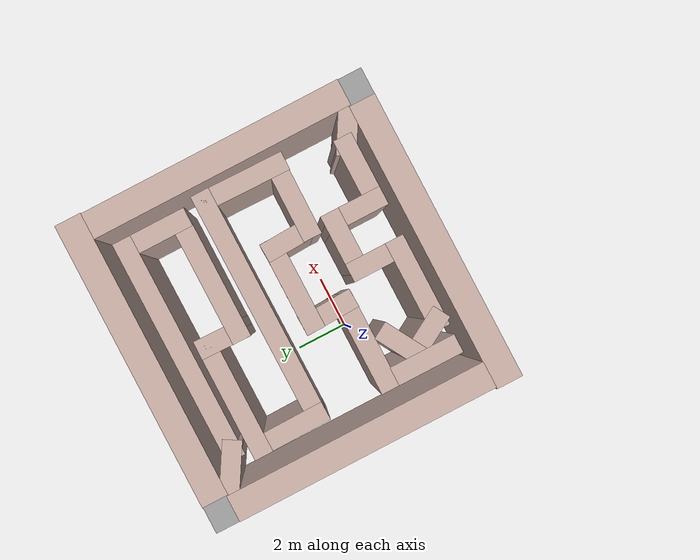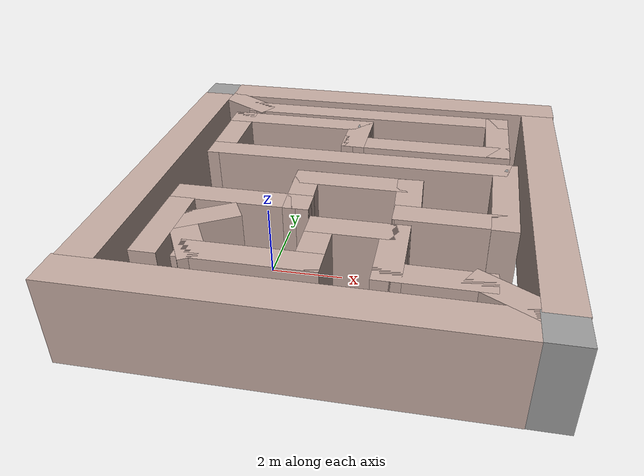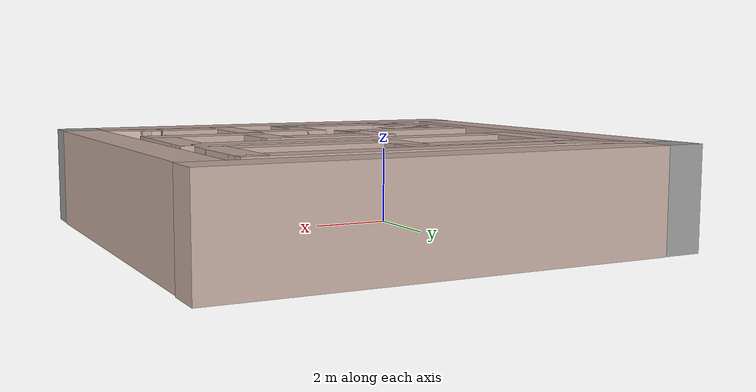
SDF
<?xml version='1.0'?>
<sdf version='1.7'>
  <model name='kutay2.world'>
    <pose>1.84134 1.51319 0 0 -0 0</pose>
    <link name='Wall_38'>
      <collision name='Wall_38_Collision'>
        <geometry>
          <box>
            <size>10 1 2.5</size>
          </box>
        </geometry>
        <pose>0 0 1.25 0 -0 0</pose>
      </collision>
      <visual name='Wall_38_Visual'>
        <pose>0 0 1.25 0 -0 0</pose>
        <geometry>
          <box>
            <size>10 1 2.5</size>
          </box>
        </geometry>
        <material>
          <script>
            <uri>file://media/materials/scripts/gazebo.material</uri>
            <name>Gazebo/Grey</name>
          </script>
          <ambient>0.760784 0.662745 0.627451 1</ambient>
        </material>
        <meta>
          <layer>0</layer>
        </meta>
      </visual>
      <pose>-5.47025 0.029594 0 0 -0 -1.5708</pose>
    </link>
    <link name='Wall_40'>
      <collision name='Wall_40_Collision'>
        <geometry>
          <box>
            <size>1.01 1 2.5</size>
          </box>
        </geometry>
        <pose>0 0 1.25 0 -0 0</pose>
      </collision>
      <visual name='Wall_40_Visual'>
        <pose>0 0 1.25 0 -0 0</pose>
        <geometry>
          <box>
            <size>1.01 1 2.5</size>
          </box>
        </geometry>
        <material>
          <script>
            <uri>file://media/materials/scripts/gazebo.material</uri>
            <name>Gazebo/Grey</name>
          </script>
          <ambient>1 1 1 1</ambient>
        </material>
        <meta>
          <layer>0</layer>
        </meta>
      </visual>
      <pose>-5.44703 5.42823 0 0 -0 0</pose>
    </link>
    <link name='Wall_42'>
      <collision name='Wall_42_Collision'>
        <geometry>
          <box>
            <size>11 1 2.5</size>
          </box>
        </geometry>
        <pose>0 0 1.25 0 -0 0</pose>
      </collision>
      <visual name='Wall_42_Visual'>
        <pose>0 0 1.25 0 -0 0</pose>
        <geometry>
          <box>
            <size>11 1 2.5</size>
          </box>
        </geometry>
        <material>
          <script>
            <uri>file://media/materials/scripts/gazebo.material</uri>
            <name>Gazebo/Grey</name>
          </script>
          <ambient>0.760784 0.662745 0.627451 1</ambient>
        </material>
        <meta>
          <layer>0</layer>
        </meta>
      </visual>
      <pose>0.532427 5.45539 0 0 -0 3.14159</pose>
    </link>
    <link name='Wall_45'>
      <collision name='Wall_45_Collision'>
        <geometry>
          <box>
            <size>10 1 2.5</size>
          </box>
        </geometry>
        <pose>0 0 1.25 0 -0 0</pose>
      </collision>
      <visual name='Wall_45_Visual'>
        <pose>0 0 1.25 0 -0 0</pose>
        <geometry>
          <box>
            <size>10 1 2.5</size>
          </box>
        </geometry>
        <material>
          <script>
            <uri>file://media/materials/scripts/gazebo.material</uri>
            <name>Gazebo/Grey</name>
          </script>
          <ambient>0.760784 0.662745 0.627451 1</ambient>
        </material>
        <meta>
          <layer>0</layer>
        </meta>
      </visual>
      <pose>5.49894 -0.043102 0 0 -0 1.5708</pose>
    </link>
    <link name='Wall_47'>
      <collision name='Wall_47_Collision'>
        <geometry>
          <box>
            <size>1.01 1 2.5</size>
          </box>
        </geometry>
        <pose>0 0 1.25 0 -0 0</pose>
      </collision>
      <visual name='Wall_47_Visual'>
        <pose>0 0 1.25 0 -0 0</pose>
        <geometry>
          <box>
            <size>1.01 1 2.5</size>
          </box>
        </geometry>
        <material>
          <script>
            <uri>file://media/materials/scripts/gazebo.material</uri>
            <name>Gazebo/Grey</name>
          </script>
          <ambient>0 0 0 1</ambient>
        </material>
        <meta>
          <layer>0</layer>
        </meta>
      </visual>
      <pose>5.47084 -5.44826 0 0 -0 3.14159</pose>
    </link>
    <link name='Wall_49'>
      <collision name='Wall_49_Collision'>
        <geometry>
          <box>
            <size>11 1 2.5</size>
          </box>
        </geometry>
        <pose>0 0 1.25 0 -0 0</pose>
      </collision>
      <visual name='Wall_49_Visual'>
        <pose>0 0 1.25 0 -0 0</pose>
        <geometry>
          <box>
            <size>11 1 2.5</size>
          </box>
        </geometry>
        <material>
          <script>
            <uri>file://media/materials/scripts/gazebo.material</uri>
            <name>Gazebo/Grey</name>
          </script>
          <ambient>0.760784 0.662745 0.627451 1</ambient>
        </material>
        <meta>
          <layer>0</layer>
        </meta>
      </visual>
      <pose>-0.532427 -5.45539 0 0 -0 0</pose>
    </link>
    <link name='Wall_53'>
      <collision name='Wall_53_Collision'>
        <geometry>
          <box>
            <size>2.06393 0.7 2.5</size>
          </box>
        </geometry>
        <pose>0 0 1.25 0 -0 0</pose>
      </collision>
      <visual name='Wall_53_Visual'>
        <pose>0 0 1.25 0 -0 0</pose>
        <geometry>
          <box>
            <size>2.06393 0.7 2.5</size>
          </box>
        </geometry>
        <material>
          <script>
            <uri>file://media/materials/scripts/gazebo.material</uri>
            <name>Gazebo/Grey</name>
          </script>
         <ambient>0.760784 0.662745 0.627451 1</ambient>
        </material>
        <meta>
          <layer>0</layer>
        </meta>
      </visual>
      <pose>-4.22194 4.47349 0 0 -0 2.60459</pose>
    </link>
    <link name='Wall_55'>
      <collision name='Wall_55_Collision'>
        <geometry>
          <box>
            <size>8.52758 0.7 2.5</size>
          </box>
        </geometry>
        <pose>0 0 1.25 0 -0 0</pose>
      </collision>
      <visual name='Wall_55_Visual'>
        <pose>0 0 1.25 0 -0 0</pose>
        <geometry>
          <box>
            <size>8.52758 0.7 2.5</size>
          </box>
        </geometry>
        <material>
          <script>
            <uri>file://media/materials/scripts/gazebo.material</uri>
            <name>Gazebo/Grey</name>
          </script>
          <ambient>0.760784 0.662745 0.627451 1</ambient>
        </material>
        <meta>
          <layer>0</layer>
        </meta>
      </visual>
      <pose>0.277814 4.13489 0 0 -0 -3.13897</pose>
    </link>
    <link name='Wall_57'>
      <collision name='Wall_57_Collision'>
        <geometry>
          <box>
            <size>2.75 0.7 2.5</size>
          </box>
        </geometry>
        <pose>0 0 1.25 0 -0 0</pose>
      </collision>
      <visual name='Wall_57_Visual'>
        <pose>0 0 1.25 0 -0 0</pose>
        <geometry>
          <box>
            <size>2.75 0.7 2.5</size>
          </box>
        </geometry>
        <material>
          <script>
            <uri>file://media/materials/scripts/gazebo.material</uri>
            <name>Gazebo/Grey</name>
          </script>
          <ambient>0.760784 0.662745 0.627451 1</ambient>
        </material>
        <meta>
          <layer>0</layer>
        </meta>
      </visual>
      <pose>4.19159 3.10004 0 0 -0 1.5708</pose>
    </link>
    <link name='Wall_59'>
      <collision name='Wall_59_Collision'>
        <geometry>
          <box>
            <size>5 0.7 2.5</size>
          </box>
        </geometry>
        <pose>0 0 1.25 0 -0 0</pose>
      </collision>
      <visual name='Wall_59_Visual'>
        <pose>0 0 1.25 0 -0 0</pose>
        <geometry>
          <box>
            <size>5 0.7 2.5</size>
          </box>
        </geometry>
        <material>
          <script>
            <uri>file://media/materials/scripts/gazebo.material</uri>
            <name>Gazebo/Grey</name>
          </script>
          <ambient>0.760784 0.662745 0.627451 1</ambient>
        </material>
        <meta>
          <layer>0</layer>
        </meta>
      </visual>
      <pose>2.04663 2.05293 0 0 -0 -3.14154</pose>
    </link>
    <link name='Wall_63'>
      <collision name='Wall_63_Collision'>
        <geometry>
          <box>
            <size>1.88063 0.7 2.5</size>
          </box>
        </geometry>
        <pose>0 0 1.25 0 -0 0</pose>
      </collision>
      <visual name='Wall_63_Visual'>
        <pose>0 0 1.25 0 -0 0</pose>
        <geometry>
          <box>
            <size>1.88063 0.7 2.5</size>
          </box>
        </geometry>
        <material>
          <script>
            <uri>file://media/materials/scripts/gazebo.material</uri>
            <name>Gazebo/Grey</name>
          </script>
          <ambient>0.760784 0.662745 0.627451 1</ambient>
        </material>
        <meta>
          <layer>0</layer>
        </meta>
      </visual>
      <pose>-0.093279 2.64303 0 0 -0 1.55376</pose>
    </link>
    <link name='Wall_65'>
      <collision name='Wall_65_Collision'>
        <geometry>
          <box>
            <size>4.60974 0.7 2.5</size>
          </box>
        </geometry>
        <pose>0 0 1.25 0 -0 0</pose>
      </collision>
      <visual name='Wall_65_Visual'>
        <pose>0 0 1.25 0 -0 0</pose>
        <geometry>
          <box>
            <size>4.60974 0.7 2.5</size>
          </box>
        </geometry>
        <material>
          <script>
            <uri>file://media/materials/scripts/gazebo.material</uri>
            <name>Gazebo/Grey</name>
          </script>
          <ambient>0.760784 0.662745 0.627451 1</ambient>
        </material>
        <meta>
          <layer>0</layer>
        </meta>
      </visual>
      <pose>-2.03809 3.23303 0 0 -0 0.000116</pose>
    </link>
    <link name='Wall_66'>
      <collision name='Wall_66_Collision'>
        <geometry>
          <box>
            <size>0.231087 0.15 2.5</size>
          </box>
        </geometry>
        <pose>0 0 1.25 0 -0 0</pose>
      </collision>
      <visual name='Wall_66_Visual'>
        <pose>0 0 1.25 0 -0 0</pose>
        <geometry>
          <box>
            <size>0.231087 0.15 2.5</size>
          </box>
        </geometry>
        <material>
          <script>
            <uri>file://media/materials/scripts/gazebo.material</uri>
            <name>Gazebo/Grey</name>
          </script>
          <ambient>1 1 1 1</ambient>
        </material>
        <meta>
          <layer>0</layer>
        </meta>
      </visual>
      <pose>-0.088279 3.19303 0 0 -0 -1.69585</pose>
    </link>
    <link name='Wall_68'>
      <collision name='Wall_68_Collision'>
        <geometry>
          <box>
            <size>2.96658 0.7 2.5</size>
          </box>
        </geometry>
        <pose>0 0 1.25 0 -0 0</pose>
      </collision>
      <visual name='Wall_68_Visual'>
        <pose>0 0 1.25 0 -0 0</pose>
        <geometry>
          <box>
            <size>2.96658 0.7 2.5</size>
          </box>
        </geometry>
        <material>
          <script>
            <uri>file://media/materials/scripts/gazebo.material</uri>
            <name>Gazebo/Grey</name>
          </script>
          <ambient>0.760784 0.662745 0.627451 1</ambient>
        </material>
        <meta>
          <layer>0</layer>
        </meta>
      </visual>
      <pose>-3.96624 2.09959 0 0 -0 1.58271</pose>
    </link>
    <link name='Wall_70'>
      <collision name='Wall_70_Collision'>
        <geometry>
          <box>
            <size>9.05324 0.7 2.5</size>
          </box>
        </geometry>
        <pose>0 0 1.25 0 -0 0</pose>
      </collision>
      <visual name='Wall_70_Visual'>
        <pose>0 0 1.25 0 -0 0</pose>
        <geometry>
          <box>
            <size>9.05324 0.7 2.5</size>
          </box>
        </geometry>
        <material>
          <script>
            <uri>file://media/materials/scripts/gazebo.material</uri>
            <name>Gazebo/Grey</name>
          </script>
          <ambient>0.760784 0.662745 0.627451 1</ambient>
        </material>
        <meta>
          <layer>0</layer>
        </meta>
      </visual>
      <pose>0.223866 0.979682 0 0 -0 -3.13841</pose>
    </link>
    <link name='Wall_73'>
      <collision name='Wall_73_Collision'>
        <geometry>
          <box>
            <size>3.47107 0.7 2.5</size>
          </box>
        </geometry>
        <pose>0 0 1.25 0 -0 0</pose>
      </collision>
      <visual name='Wall_73_Visual'>
        <pose>0 0 1.25 0 -0 0</pose>
        <geometry>
          <box>
            <size>3.47107 0.7 2.5</size>
          </box>
        </geometry>
        <material>
          <script>
            <uri>file://media/materials/scripts/gazebo.material</uri>
            <name>Gazebo/Grey</name>
          </script>
          <ambient>0.760784 0.662745 0.627451 1</ambient>
        </material>
        <meta>
          <layer>0</layer>
        </meta>
      </visual>
      <pose>4.37554 -0.418928 0 0 -0 1.5528</pose>
    </link>
    <link name='Wall_74'>
      <collision name='Wall_74_Collision'>
        <geometry>
          <box>
            <size>0.15 0.15 2.5</size>
          </box>
        </geometry>
        <pose>0 0 1.25 0 -0 0</pose>
      </collision>
      <visual name='Wall_74_Visual'>
        <pose>0 0 1.25 0 -0 0</pose>
        <geometry>
          <box>
            <size>0.15 0.15 2.5</size>
          </box>
        </geometry>
        <material>
          <script>
            <uri>file://media/materials/scripts/gazebo.material</uri>
            <name>Gazebo/Grey</name>
          </script>
          <ambient>1 1 1 1</ambient>
        </material>
        <meta>
          <layer>0</layer>
        </meta>
      </visual>
      <pose>4.40047 0.992982 0 0 -0 0</pose>
    </link>
    <link name='Wall_76'>
      <collision name='Wall_76_Collision'>
        <geometry>
          <box>
            <size>3.15307 0.7 2.5</size>
          </box>
        </geometry>
        <pose>0 0 1.25 0 -0 0</pose>
      </collision>
      <visual name='Wall_76_Visual'>
        <pose>0 0 1.25 0 -0 0</pose>
        <geometry>
          <box>
            <size>3.15307 0.7 2.5</size>
          </box>
        </geometry>
        <material>
          <script>
            <uri>file://media/materials/scripts/gazebo.material</uri>
            <name>Gazebo/Grey</name>
          </script>
          <ambient>0.760784 0.662745 0.627451 1</ambient>
        </material>
        <meta>
          <layer>0</layer>
        </meta>
      </visual>
      <pose>3.1241 -1.76812 0 0 -0 -0.007756</pose>
    </link>
    <link name='Wall_79'>
      <collision name='Wall_79_Collision'>
        <geometry>
          <box>
            <size>2.0777 0.7 2.5</size>
          </box>
        </geometry>
        <pose>0 0 1.25 0 -0 0</pose>
      </collision>
      <visual name='Wall_79_Visual'>
        <pose>0 0 1.25 0 -0 0</pose>
        <geometry>
          <box>
            <size>2.0777 0.7 2.5</size>
          </box>
        </geometry>
        <material>
          <script>
            <uri>file://media/materials/scripts/gazebo.material</uri>
            <name>Gazebo/Grey</name>
          </script>
          <ambient>0.760784 0.662745 0.627451 1</ambient>
        </material>
        <meta>
          <layer>0</layer>
        </meta>
      </visual>
      <pose>1.86742 -1.05522 0 0 -0 -1.52697</pose>
    </link>
    <link name='Wall_81'>
      <collision name='Wall_81_Collision'>
        <geometry>
          <box>
            <size>2.5 0.7 2.5</size>
          </box>
        </geometry>
        <pose>0 0 1.25 0 -0 0</pose>
      </collision>
      <visual name='Wall_81_Visual'>
        <pose>0 0 1.25 0 -0 0</pose>
        <geometry>
          <box>
            <size>2.5 0.7 2.5</size>
          </box>
        </geometry>
        <material>
          <script>
            <uri>file://media/materials/scripts/gazebo.material</uri>
            <name>Gazebo/Grey</name>
          </script>
          <ambient>0.760784 0.662745 0.627451 1</ambient>
        </material>
        <meta>
          <layer>0</layer>
        </meta>
      </visual>
      <pose>-4.00913 -3.27199 0 0 -0 -1.5708</pose>
    </link>
    <link name='Wall_83'>
      <collision name='Wall_83_Collision'>
        <geometry>
          <box>
            <size>1.80026 0.7 2.5</size>
          </box>
        </geometry>
        <pose>0 0 1.25 0 -0 0</pose>
      </collision>
      <visual name='Wall_83_Visual'>
        <pose>0 0 1.25 0 -0 0</pose>
        <geometry>
          <box>
            <size>1.80026 0.7 2.5</size>
          </box>
        </geometry>
        <material>
          <script>
            <uri>file://media/materials/scripts/gazebo.material</uri>
            <name>Gazebo/Grey</name>
          </script>
          <ambient>0.760784 0.662745 0.627451 1</ambient>
        </material>
        <meta>
          <layer>0</layer>
        </meta>
      </visual>
      <pose>-3.13784 -2.76819 0 0 -0 -2.61816</pose>
    </link>
    <link name='Wall_84'>
      <collision name='Wall_84_Collision'>
        <geometry>
          <box>
            <size>2.04981 0.7 2.5</size>
          </box>
        </geometry>
        <pose>0 0 1.25 0 -0 0</pose>
      </collision>
      <visual name='Wall_84_Visual'>
        <pose>0 0 1.25 0 -0 0</pose>
        <geometry>
          <box>
            <size>2.04981 0.7 2.5</size>
          </box>
        </geometry>
        <material>
          <script>
            <uri>file://media/materials/scripts/gazebo.material</uri>
            <name>Gazebo/Grey</name>
          </script>
          <ambient>0.760784 0.662745 0.627451 1</ambient>
        </material>
        <meta>
          <layer>0</layer>
        </meta>
      </visual>
      <pose>-3.27684 -3.62769 0 0 -0 -1.04715</pose>
    </link>
    <link name='Wall_86'>
      <collision name='Wall_86_Collision'>
        <geometry>
          <box>
            <size>3.5 0.7 2.5</size>
          </box>
        </geometry>
        <pose>0 0 1.25 0 -0 0</pose>
      </collision>
      <visual name='Wall_86_Visual'>
        <pose>0 0 1.25 0 -0 0</pose>
        <geometry>
          <box>
            <size>3.5 0.7 2.5</size>
          </box>
        </geometry>
        <material>
          <script>
            <uri>file://media/materials/scripts/gazebo.material</uri>
            <name>Gazebo/Grey</name>
          </script>
          <ambient>0.760784 0.662745 0.627451 1</ambient>
        </material>
        <meta>
          <layer>0</layer>
        </meta>
      </visual>
      <pose>-1.53934 -4.21219 0 0 -0 3.14159</pose>
    </link>
    <link name='Wall_88'>
      <collision name='Wall_88_Collision'>
        <geometry>
          <box>
            <size>2.25 0.7 2.5</size>
          </box>
        </geometry>
        <pose>0 0 1.25 0 -0 0</pose>
      </collision>
      <visual name='Wall_88_Visual'>
        <pose>0 0 1.25 0 -0 0</pose>
        <geometry>
          <box>
            <size>2.25 0.7 2.5</size>
          </box>
        </geometry>
        <material>
          <script>
            <uri>file://media/materials/scripts/gazebo.material</uri>
            <name>Gazebo/Grey</name>
          </script>
          <ambient>0.760784 0.662745 0.627451 1</ambient>
        </material>
        <meta>
          <layer>0</layer>
        </meta>
      </visual>
      <pose>-0.139336 -3.43719 0 0 -0 -1.5708</pose>
    </link>
    <link name='Wall_90'>
      <collision name='Wall_90_Collision'>
        <geometry>
          <box>
            <size>2.55 0.7 2.5</size>
          </box>
        </geometry>
        <pose>0 0 1.25 0 -0 0</pose>
      </collision>
      <visual name='Wall_90_Visual'>
        <pose>0 0 1.25 0 -0 0</pose>
        <geometry>
          <box>
            <size>2.55 0.7 2.5</size>
          </box>
        </geometry>
        <material>
          <script>
            <uri>file://media/materials/scripts/gazebo.material</uri>
            <name>Gazebo/Grey</name>
          </script>
          <ambient>0.760784 0.662745 0.627451 1</ambient>
        </material>
        <meta>
          <layer>0</layer>
        </meta>
      </visual>
      <pose>0.785664 -2.66219 0 0 -0 0</pose>
    </link>
    <link name='Wall_91'>
      <collision name='Wall_91_Collision'>
        <geometry>
          <box>
            <size>2.3 0.7 2.5</size>
          </box>
        </geometry>
        <pose>0 0 1.25 0 -0 0</pose>
      </collision>
      <visual name='Wall_91_Visual'>
        <pose>0 0 1.25 0 -0 0</pose>
        <geometry>
          <box>
            <size>2.3 0.7 2.5</size>
          </box>
        </geometry>
        <material>
          <script>
            <uri>file://media/materials/scripts/gazebo.material</uri>
            <name>Gazebo/Grey</name>
          </script>
          <ambient>0.760784 0.662745 0.627451 1</ambient>
        </material>
        <meta>
          <layer>0</layer>
        </meta>
      </visual>
      <pose>1.71066 -3.46219 0 0 -0 -1.5708</pose>
    </link>
    <link name='Wall_92'>
      <collision name='Wall_92_Collision'>
        <geometry>
          <box>
            <size>2.8 0.7 2.5</size>
          </box>
        </geometry>
        <pose>0 0 1.25 0 -0 0</pose>
      </collision>
      <visual name='Wall_92_Visual'>
        <pose>0 0 1.25 0 -0 0</pose>
        <geometry>
          <box>
            <size>2.8 0.7 2.5</size>
          </box>
        </geometry>
        <material>
          <script>
            <uri>file://media/materials/scripts/gazebo.material</uri>
            <name>Gazebo/Grey</name>
          </script>
          <ambient>0.760784 0.662745 0.627451 1</ambient>
        </material>
        <meta>
          <layer>0</layer>
        </meta>
      </visual>
      <pose>2.76066 -4.26219 0 0 -0 0</pose>
    </link>
    <link name='Wall_93'>
      <collision name='Wall_93_Collision'>
        <geometry>
          <box>
            <size>2.05 0.7 2.5</size>
          </box>
        </geometry>
        <pose>0 0 1.25 0 -0 0</pose>
      </collision>
      <visual name='Wall_93_Visual'>
        <pose>0 0 1.25 0 -0 0</pose>
        <geometry>
          <box>
            <size>2.05 0.7 2.5</size>
          </box>
        </geometry>
        <material>
          <script>
            <uri>file://media/materials/scripts/gazebo.material</uri>
            <name>Gazebo/Grey</name>
          </script>
          <ambient>0.760784 0.662745 0.627451 1</ambient>
        </material>
        <meta>
          <layer>0</layer>
        </meta>
      </visual>
      <pose>4.39516 -4.59969 0 0 -0 -0.523649</pose>
    </link>
    <link name='Wall_95'>
      <collision name='Wall_95_Collision'>
        <geometry>
          <box>
            <size>3.55 0.7 2.5</size>
          </box>
        </geometry>
        <pose>0 0 1.25 0 -0 0</pose>
      </collision>
      <visual name='Wall_95_Visual'>
        <pose>0 0 1.25 0 -0 0</pose>
        <geometry>
          <box>
            <size>3.55 0.7 2.5</size>
          </box>
        </geometry>
        <material>
          <script>
            <uri>file://media/materials/scripts/gazebo.material</uri>
            <name>Gazebo/Grey</name>
          </script>
          <ambient>0.760784 0.662745 0.627451 1</ambient>
        </material>
        <meta>
          <layer>0</layer>
        </meta>
      </visual>
      <pose>0.412246 -0.367029 0 0 -0 3.14159</pose>
    </link>
    <link name='Wall_96'>
      <collision name='Wall_96_Collision'>
        <geometry>
          <box>
            <size>2.03599 0.7 2.5</size>
          </box>
        </geometry>
        <pose>0 0 1.25 0 -0 0</pose>
      </collision>
      <visual name='Wall_96_Visual'>
        <pose>0 0 1.25 0 -0 0</pose>
        <geometry>
          <box>
            <size>2.03599 0.7 2.5</size>
          </box>
        </geometry>
        <material>
          <script>
            <uri>file://media/materials/scripts/gazebo.material</uri>
            <name>Gazebo/Grey</name>
          </script>
          <ambient>0.760784 0.662745 0.627451 1</ambient>
        </material>
        <meta>
          <layer>0</layer>
        </meta>
      </visual>
      <pose>-0.984523 -1.03442 0 0 -0 -1.52852</pose>
    </link>
    <link name='Wall_97'>
      <collision name='Wall_97_Collision'>
        <geometry>
          <box>
            <size>3.75 0.7 2.5</size>
          </box>
        </geometry>
        <pose>0 0 1.25 0 -0 0</pose>
      </collision>
      <visual name='Wall_97_Visual'>
        <pose>0 0 1.25 0 -0 0</pose>
        <geometry>
          <box>
            <size>3.75 0.7 2.5</size>
          </box>
        </geometry>
        <material>
          <script>
            <uri>file://media/materials/scripts/gazebo.material</uri>
            <name>Gazebo/Grey</name>
          </script>
          <ambient>0.760784 0.662745 0.627451 1</ambient>
        </material>
        <meta>
          <layer>0</layer>
        </meta>
      </visual>
      <pose>-2.48129 -1.70182 0 0 -0 3.14159</pose>
    </link>
    <static>1</static>
  </model>
</sdf>
